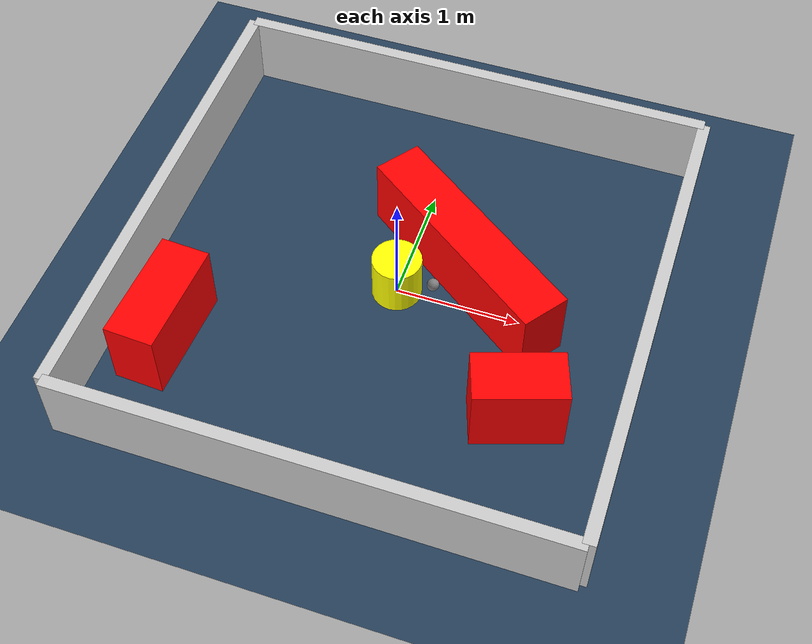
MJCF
<?xml version="1.0" ?>
<mujoco model="generated_environment">
  <option timestep="0.01" integrator="RK4" cone="elliptic"/>
  <default>
    <geom density="1"/>
  </default>
  <asset>
    <texture builtin="gradient" height="3072" rgb1="0.3 0.5 0.7" rgb2="0 0 0" type="skybox" width="512"/>
    <texture builtin="checker" height="300" mark="edge" markrgb="0.8 0.8 0.8" name="groundplane" rgb1="0.2 0.3 0.4" rgb2="0.1 0.2 0.3" type="2d" width="300"/>
    <material name="groundplane" reflectance="0.2" texrepeat="5 5" texture="groundplane" texuniform="true"/>
    <material name="robot" rgba="0.0 1.0 0.0 1"/>
  </asset>
  <worldbody>
    <light dir="0 0 -1" directional="true" pos="0 0 1.5"/>
    <geom condim="4" friction="1.0 0.005 0.001" material="groundplane" name="floor" size="0 0 0.05" type="plane"/>
    <body name="walls">
      <geom name="wall_1" condim="4" pos="-2.0 0.0 0.3" rgba="0.800000011920929 0.800000011920929 0.800000011920929 1.0" size="0.05 2.0 0.3" type="box"/>
      <geom name="wall_2" condim="4" pos="2.0 0.0 0.3" rgba="0.800000011920929 0.800000011920929 0.800000011920929 1.0" size="0.05 2.0 0.3" type="box"/>
      <geom name="wall_3" condim="4" pos="0.0 -2.0 0.3" rgba="0.800000011920929 0.800000011920929 0.800000011920929 1.0" size="2.0 0.05 0.3" type="box"/>
      <geom name="wall_4" condim="4" pos="0.0 2.0 0.3" rgba="0.800000011920929 0.800000011920929 0.800000011920929 1.0" size="2.0 0.05 0.3" type="box"/>
    </body>
    <body name="robot">
      <joint name="joint_x" type="slide" pos="0 0 0" axis="1 0 0"/>
      <joint name="joint_y" type="slide" pos="0 0 0" axis="0 1 0"/>
      <geom name="robot" type="sphere" pos="0.3 0.0 0.2" size="0.05" mass="5." friction="1.0 0.005 0.0001" condim="4" rgba="0.5 0.5 0.5 1.0"/>
      <site name="sensor_ball"/>
    </body>
    <body name="obstacle_movable_1">
      <geom name="obstacle_movable_1" condim="4" pos="0.0 0.0 0.2" euler="0 0 0.0" friction="1.0 0.005 0.001" rgba="1.0 1.0 0.0 1.0" size="0.2 0.2 0.0" type="cylinder" mass="0.1"/>
      <joint type="free"/>
    </body>
    <body name="obstacle_2_static">
      <geom name="obstacle_2_static" condim="4" pos="-1.5456666176946363 -1.010124313718526 0.3" euler="0 0 86.9742486928173" friction="1.0 0.005 0.001" rgba="1 0 0 1" size="0.4613692669356714 0.2 0.3" type="box"/>
    </body>
    <body name="obstacle_3_static">
      <geom name="obstacle_3_static" condim="4" pos="0.4847551846469307 0.29385128517581305 0.3" euler="0 0 143.92145306597584" friction="1.0 0.005 0.001" rgba="1 0 0 1" size="0.9552941209898906 0.2 0.3" type="box"/>
    </body>
    <body name="obstacle_4_static">
      <geom name="obstacle_4_static" condim="4" pos="1.2217759819248952 -0.8729577670217556 0.3" euler="0 0 18.791709243118877" friction="1.0 0.005 0.001" rgba="1 0 0 1" size="0.35259435387813387 0.2 0.3" type="box"/>
    </body>
  </worldbody>
  <actuator>
    <motor name="actuator_x" joint="joint_x" gear="1" ctrlrange="-1 1"/>
    <motor name="actuator_y" joint="joint_y" gear="1" ctrlrange="-1 1"/>
  </actuator>
</mujoco>
